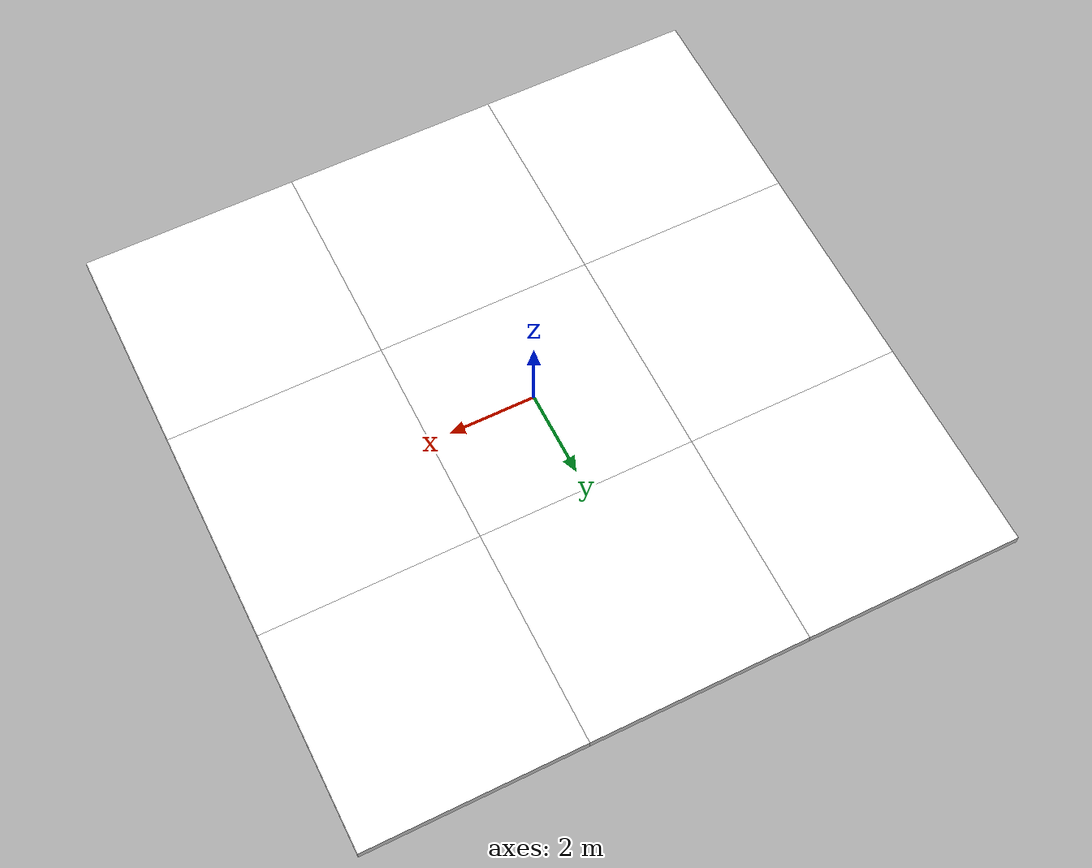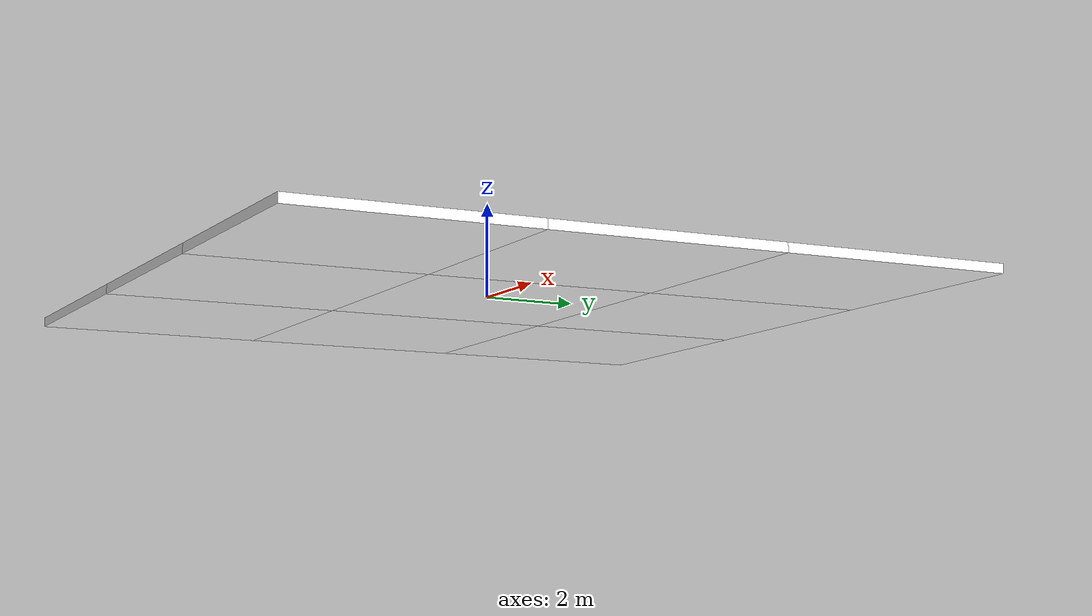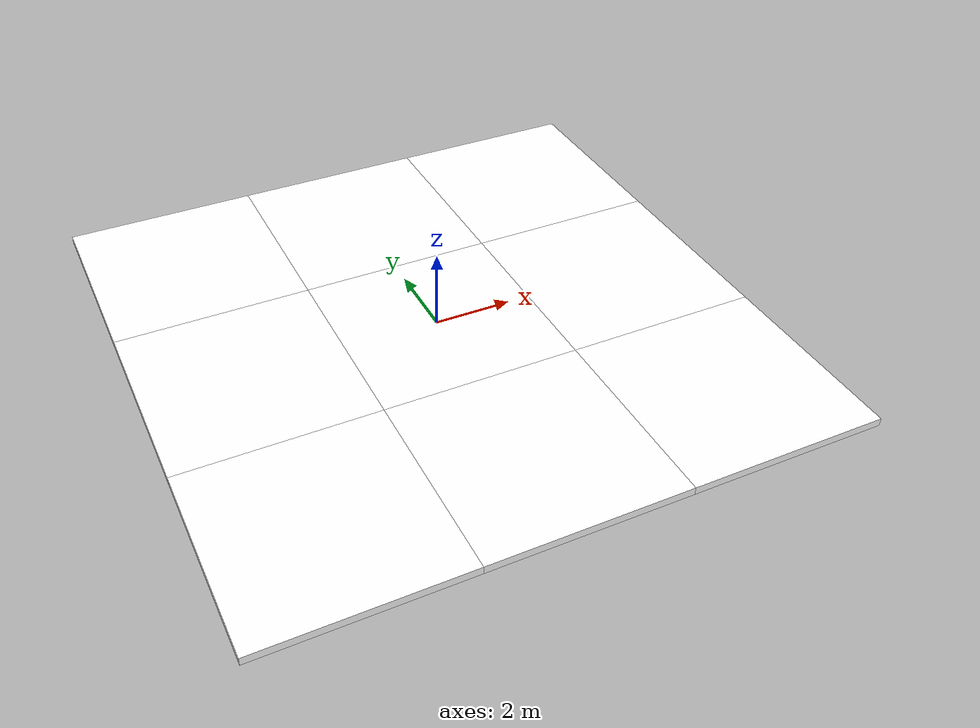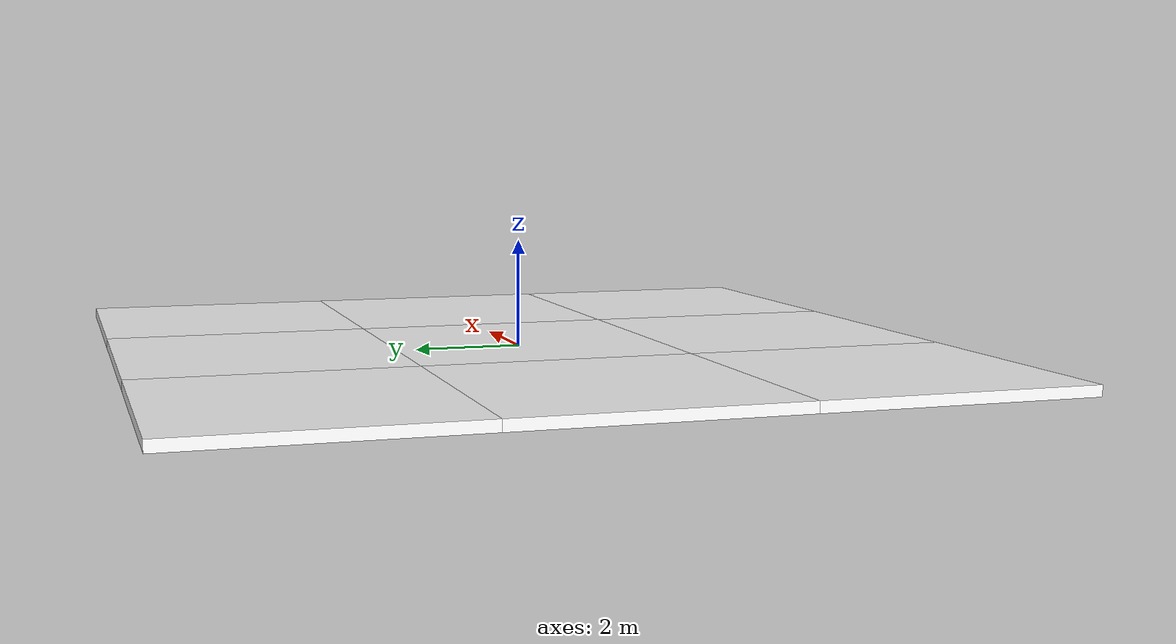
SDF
<?xml version="1.0"?>
<sdf version="1.9">
  <model name="mud_box_3x3">
    <static>true</static>

    <!-- Row 1 -->
    <link name="link_1_1">
      <pose>-5 5 0 0 0 0</pose>
      <collision name="collision">
        <geometry>
          <box>
            <size>5 5 0.2</size>
          </box>
        </geometry>
      </collision>
      <visual name="visual">
        <cast_shadows>false</cast_shadows>
        <geometry>
          <box><size>5 5 0.2</size></box>
        </geometry>
        <material>
          <diffuse>1 1 1 1</diffuse>
          <specular>0.1 0.1 0.1 1</specular>
          <pbr>
            <metal>
              <albedo_map>materials/textures/mud.png</albedo_map>
            </metal>
          </pbr>
        </material>
      </visual>
    </link>

    <link name="link_1_2">
      <pose>0 5 0 0 0 0</pose>
      <collision name="collision">
        <geometry>
          <box>
            <size>5 5 0.2</size>
          </box>
        </geometry>
      </collision>
      <visual name="visual">
        <cast_shadows>false</cast_shadows>
        <geometry>
          <box><size>5 5 0.2</size></box>
        </geometry>
        <material>
          <diffuse>1 1 1 1</diffuse>
          <specular>0.1 0.1 0.1 1</specular>
          <pbr>
            <metal>
              <albedo_map>materials/textures/mud.png</albedo_map>
            </metal>
          </pbr>
        </material>
      </visual>
    </link>

    <link name="link_1_3">
      <pose>5 5 0 0 0 0</pose>
      <collision name="collision">
        <geometry>
          <box>
            <size>5 5 0.2</size>
          </box>
        </geometry>
      </collision>
      <visual name="visual">
        <cast_shadows>false</cast_shadows>
        <geometry>
          <box><size>5 5 0.2</size></box>
        </geometry>
        <material>
          <diffuse>1 1 1 1</diffuse>
          <specular>0.1 0.1 0.1 1</specular>
          <pbr>
            <metal>
              <albedo_map>materials/textures/mud.png</albedo_map>
            </metal>
          </pbr>
        </material>
      </visual>
    </link>

    <!-- Row 2 -->
    <link name="link_2_1">
      <pose>-5 0 0 0 0 0</pose>
      <collision name="collision">
        <geometry>
          <box>
            <size>5 5 0.2</size>
          </box>
        </geometry>
      </collision>
      <visual name="visual">
        <cast_shadows>false</cast_shadows>
        <geometry>
          <box><size>5 5 0.2</size></box>
        </geometry>
        <material>
          <diffuse>1 1 1 1</diffuse>
          <specular>0.1 0.1 0.1 1</specular>
          <pbr>
            <metal>
              <albedo_map>materials/textures/mud.png</albedo_map>
            </metal>
          </pbr>
        </material>
      </visual>
    </link>

    <link name="link_2_2">
      <pose>0 0 0 0 0 0</pose>
      <collision name="collision">
        <geometry>
          <box>
            <size>5 5 0.2</size>
          </box>
        </geometry>
      </collision>
      <visual name="visual">
        <cast_shadows>false</cast_shadows>
        <geometry>
          <box><size>5 5 0.2</size></box>
        </geometry>
        <material>
          <diffuse>1 1 1 1</diffuse>
          <specular>0.1 0.1 0.1 1</specular>
          <pbr>
            <metal>
              <albedo_map>materials/textures/mud.png</albedo_map>
            </metal>
          </pbr>
        </material>
      </visual>
    </link>

    <link name="link_2_3">
      <pose>5 0 0 0 0 0</pose>
      <collision name="collision">
        <geometry>
          <box>
            <size>5 5 0.2</size>
          </box>
        </geometry>
      </collision>
      <visual name="visual">
        <cast_shadows>false</cast_shadows>
        <geometry>
          <box><size>5 5 0.2</size></box>
        </geometry>
        <material>
          <diffuse>1 1 1 1</diffuse>
          <specular>0.1 0.1 0.1 1</specular>
          <pbr>
            <metal>
              <albedo_map>materials/textures/mud.png</albedo_map>
            </metal>
          </pbr>
        </material>
      </visual>
    </link>

    <!-- Row 3 -->
    <link name="link_3_1">
      <pose>-5 -5 0 0 0 0</pose>
      <collision name="collision">
        <geometry>
          <box>
            <size>5 5 0.2</size>
          </box>
        </geometry>
      </collision>
      <visual name="visual">
        <cast_shadows>false</cast_shadows>
        <geometry>
          <box><size>5 5 0.2</size></box>
        </geometry>
        <material>
          <diffuse>1 1 1 1</diffuse>
          <specular>0.1 0.1 0.1 1</specular>
          <pbr>
            <metal>
              <albedo_map>materials/textures/mud.png</albedo_map>
            </metal>
          </pbr>
        </material>
      </visual>
    </link>

    <link name="link_3_2">
      <pose>0 -5 0 0 0 0</pose>
      <collision name="collision">
        <geometry>
          <box>
            <size>5 5 0.2</size>
          </box>
        </geometry>
      </collision>
      <visual name="visual">
        <cast_shadows>false</cast_shadows>
        <geometry>
          <box><size>5 5 0.2</size></box>
        </geometry>
        <material>
          <diffuse>1 1 1 1</diffuse>
          <specular>0.1 0.1 0.1 1</specular>
          <pbr>
            <metal>
              <albedo_map>materials/textures/mud.png</albedo_map>
            </metal>
          </pbr>
        </material>
      </visual>
    </link>

    <link name="link_3_3">
      <pose>5 -5 0 0 0 0</pose>
      <collision name="collision">
        <geometry>
          <box>
            <size>5 5 0.2</size>
          </box>
        </geometry>
      </collision>
      <visual name="visual">
        <cast_shadows>false</cast_shadows>
        <geometry>
          <box><size>5 5 0.2</size></box>
        </geometry>
        <material>
          <diffuse>1 1 1 1</diffuse>
          <specular>0.1 0.1 0.1 1</specular>
          <pbr>
            <metal>
              <albedo_map>materials/textures/mud.png</albedo_map>
            </metal>
          </pbr>
        </material>
      </visual>
    </link>
  </model>
</sdf>
